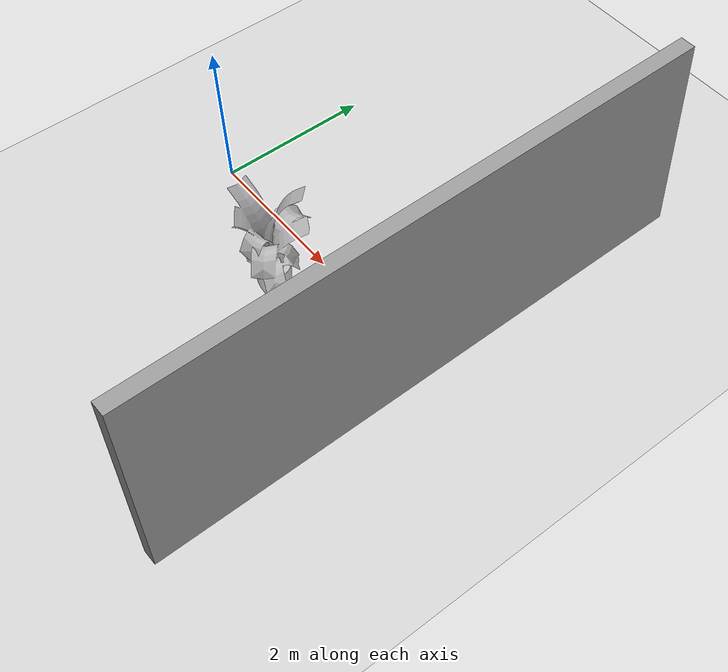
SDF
<sdf version="1.7">
 <world name="default">
  <light name="sun" type="directional">
   <pose>0 0 10 0 -0 0</pose>
   <diffuse>0.8 0.8 0.8 1</diffuse>
   <specular>0.2 0.2 0.2 1</specular>
   <attenuation>
    <range>1000</range>
    <constant>0.9</constant>
    <linear>0.01</linear>
    <quadratic>0.001</quadratic>
   </attenuation>
   <direction>-0.5 0.1 -0.9</direction>
   <spot><inner_angle>0</inner_angle><outer_angle>0</outer_angle><falloff>0</falloff></spot>
  </light>
  <model name="ground_plane">
   <static>1</static>
   <link name="link">
    <collision name="collision">
     <geometry><plane><normal>0 0 1</normal><size>100 100</size></plane></geometry>
     <surface><friction><ode><mu>100</mu><mu2>50</mu2></ode></friction></surface>
    </collision>
    <visual name="visual">
     <cast_shadows>0</cast_shadows>
     <geometry><plane><normal>0 0 1</normal><size>100 100</size></plane></geometry>
     <material>
      <script><uri>file://media/materials/scripts/gazebo.material</uri><name>Gazebo/Grey</name></script>
     </material>
    </visual>
   </link>
  </model>
  <gravity>0 0 -9.8</gravity>
  <magnetic_field>6e-06 2.3e-05 -4.2e-05</magnetic_field>
  <atmosphere type="adiabatic"/>
  <physics type="ode">
   <max_step_size>0.001</max_step_size>
   <real_time_factor>1</real_time_factor>
   <real_time_update_rate>1000</real_time_update_rate>
  </physics>
  <scene><ambient>0.4 0.4 0.4 1</ambient><background>0.7 0.7 0.7 1</background><shadows>1</shadows></scene>
  <spherical_coordinates>
   <surface_model>EARTH_WGS84</surface_model>
   <latitude_deg>0</latitude_deg>
   <longitude_deg>0</longitude_deg>
   <elevation>0</elevation>
   <heading_deg>0</heading_deg>
  </spherical_coordinates>
  <model name="referenced_plant">
   <link name="link">
    <inertial>
     <mass>1</mass>
     <inertia><ixx>0.083</ixx><ixy>0</ixy><ixz>0</ixz><iyy>0.083</iyy><iyz>0</iyz><izz>0.083</izz></inertia>
    </inertial>
    <pose>0.002889 0 -0.019073 0 -0 0</pose>
    <visual name="visual"><geometry><mesh><uri>model://WestElmIris/model.dae</uri></mesh></geometry></visual>
    <collision name="collision_1">
     <pose>0.4 0.45 1 0 -0 0</pose>
     <geometry><cylinder><radius>0.313025</radius><length>1.39643</length></cylinder></geometry>
     <surface>
      <friction>
       <ode><mu>1</mu><mu2>1</mu2><fdir1>0 0 0</fdir1><slip1>0</slip1><slip2>0</slip2></ode>
       <torsional>
        <coefficient>1</coefficient>
        <patch_radius>0</patch_radius>
        <surface_radius>0</surface_radius>
        <use_patch_radius>1</use_patch_radius>
        <ode><slip>0</slip></ode>
       </torsional>
      </friction>
      <bounce><restitution_coefficient>0</restitution_coefficient><threshold>1e+06</threshold></bounce>
      <contact>
       <collide_without_contact>0</collide_without_contact>
       <collide_without_contact_bitmask>1</collide_without_contact_bitmask>
       <collide_bitmask>1</collide_bitmask>
       <ode>
        <soft_cfm>0</soft_cfm>
        <soft_erp>0.2</soft_erp>
        <kp>1e+13</kp>
        <kd>1</kd>
        <max_vel>0.01</max_vel>
        <min_depth>0</min_depth>
       </ode>
       <bullet>
        <split_impulse>1</split_impulse>
        <split_impulse_penetration_threshold>-0.01</split_impulse_penetration_threshold>
        <soft_cfm>0</soft_cfm>
        <soft_erp>0.2</soft_erp>
        <kp>1e+13</kp>
        <kd>1</kd>
       </bullet>
      </contact>
     </surface>
    </collision>
   </link>
   <static>1</static>
   <pose>1.59409 -0.462083 -0.480927 0 -0 0</pose>
  </model>
  <model name="grey_wall">
   <static>1</static>
   <link name="link">
    <pose>0 0 1.4 0 -0 0</pose>
    <collision name="collision"><geometry><box><size>7.5 0.2 2.8</size></box></geometry></collision>
    <visual name="visual">
     <cast_shadows>0</cast_shadows>
     <geometry><box><size>7.5 0.2 2.8</size></box></geometry>
     <material>
      <script>
       <uri>model://grey_wall/materials/scripts</uri>
       <uri>model://grey_wall/materials/textures</uri>
       <name>vrc/grey_wall</name>
      </script>
     </material>
    </visual>
   </link>
   <pose>4 0 0 0 -0 1.58016</pose>
  </model>
 </world>
</sdf>
